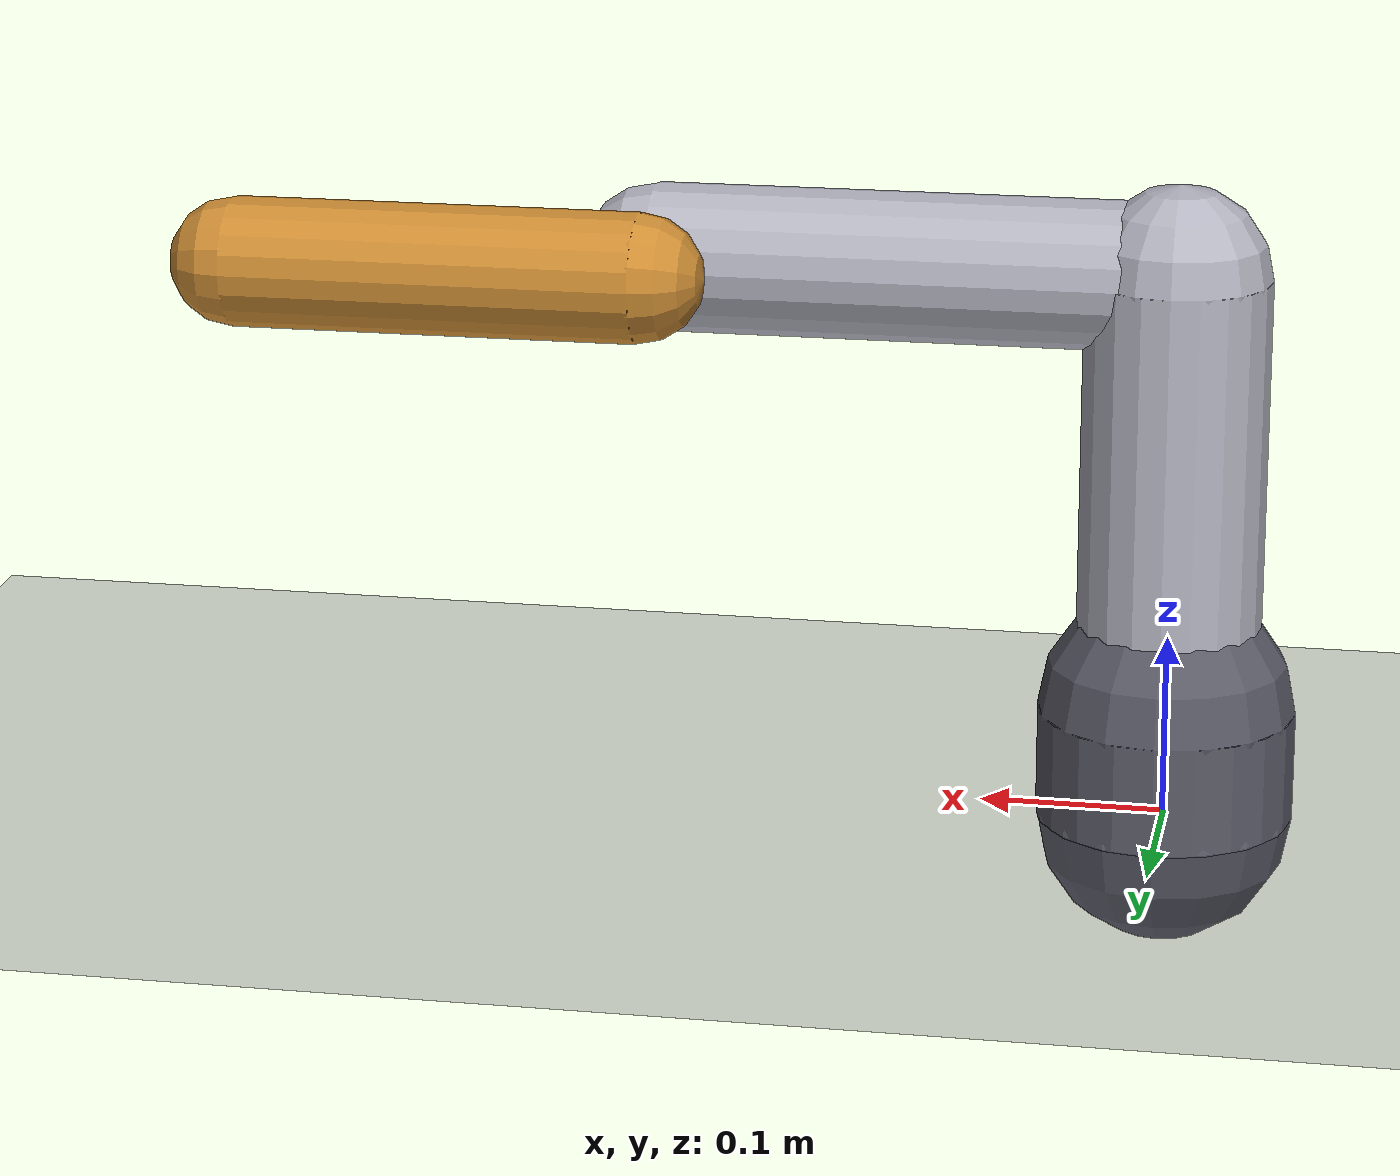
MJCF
<mujoco model="rrr_arm">
  <compiler angle="radian" inertiafromgeom="false" autolimits="true"/>

  <option gravity="0 0 -9.81" integrator="implicitfast"/>

  <visual>
    <!-- 放大离屏缓冲，便于 notebook / 脚本里直接 mujoco.Renderer 出图 -->
    <global offwidth="1280" offheight="960"/>
  </visual>

  <default>
    <joint axis="0 0 1" damping="0" armature="0" frictionloss="0" limited="false"/>
    <!-- density=0 + inertiafromgeom=false：几何只用于看，惯性全部由 inertial 显式给定 -->
    <geom type="capsule" contype="0" conaffinity="0" density="0" rgba="0.7 0.7 0.75 1"/>
  </default>

  <worldbody>
    <light name="top" pos="0 0 2"/>
    <geom name="ground" type="plane" size="1 1 0.05" rgba="0.3 0.3 0.35 1"/>

    <body name="base">
      <geom name="base_geom" fromto="0 0 0 0 0 0.06" size="0.07" rgba="0.35 0.35 0.4 1"/>

      <!-- alpha=0, a=0, d=0.30 -->
      <body name="link1" pos="0 0 0.30">
        <inertial mass="3.0" pos="0 0 -0.12"
          fullinertia="0.0244 0.0244 0.0038 0.0002 -0.0003 0.0001"/>
        <joint name="joint1"/>
        <geom name="link1_geom" fromto="0 0 -0.30 0 0 0" size="0.05"/>

        <!-- alpha=-pi/2, a=0, d=0 -->
        <body name="link2" quat="1 -1 0 0">
          <inertial mass="2.2" pos="0.14 0 0.02"
            fullinertia="0.0018 0.0153 0.0153 0.0004 0.0002 -0.0003"/>
          <joint name="joint2"/>
          <geom name="link2_geom" fromto="0 0 0 0.28 0 0" size="0.04"/>

          <!-- alpha=0, a=0.28, d=0.05（肘部横向偏置，制造 a、d 同时非零的情形） -->
          <body name="link3" pos="0.28 0 0.05">
            <inertial mass="1.4" pos="0.10 0.01 0"
              fullinertia="0.0009 0.0061 0.0061 0.0002 -0.0001 0.0002"/>
            <joint name="joint3"/>
            <geom name="link3_geom" fromto="0 0 0 0.22 0 0" size="0.035"
              rgba="0.8 0.55 0.2 1"/>
            <site name="tool" pos="0.22 0 0" size="0.012" rgba="1 0 0 1"/>
          </body>
        </body>
      </body>
    </body>
  </worldbody>

  <actuator>
    <motor name="motor1" joint="joint1" gear="1"/>
    <motor name="motor2" joint="joint2" gear="1"/>
    <motor name="motor3" joint="joint3" gear="1"/>
  </actuator>

  <sensor>
    <jointpos name="enc1" joint="joint1"/>
    <jointpos name="enc2" joint="joint2"/>
    <jointpos name="enc3" joint="joint3"/>
    <jointvel name="tach1" joint="joint1"/>
    <jointvel name="tach2" joint="joint2"/>
    <jointvel name="tach3" joint="joint3"/>
    <jointactuatorfrc name="trq1" joint="joint1"/>
    <jointactuatorfrc name="trq2" joint="joint2"/>
    <jointactuatorfrc name="trq3" joint="joint3"/>
    <framepos name="tool_pos" objtype="site" objname="tool"/>
    <framequat name="tool_quat" objtype="site" objname="tool"/>
    <framelinvel name="tool_linvel" objtype="site" objname="tool"/>
    <subtreecom name="arm_com" body="link1"/>
  </sensor>

  <keyframe>
    <key name="home" qpos="0 -0.6 1.2"/>
  </keyframe>
</mujoco>
